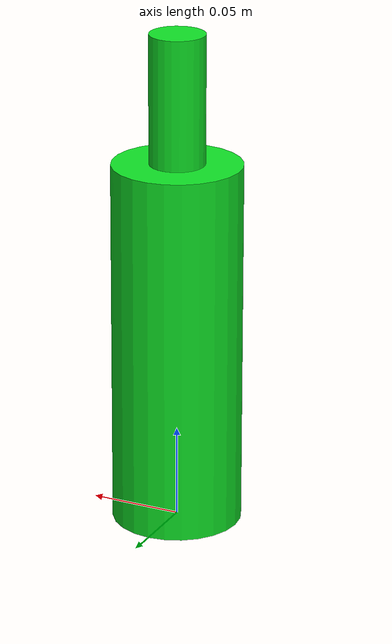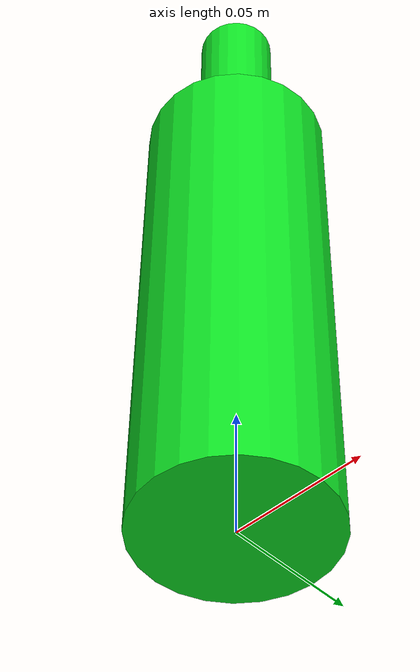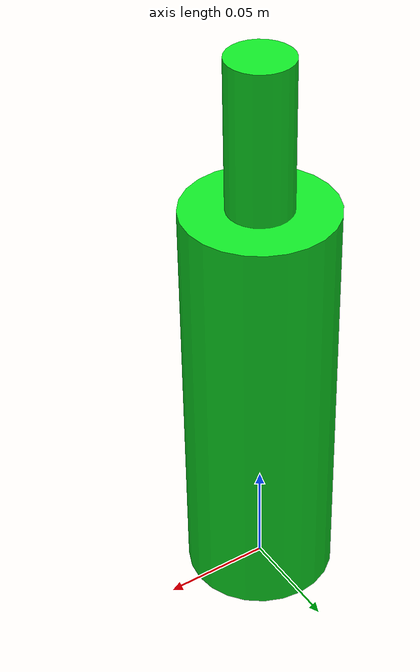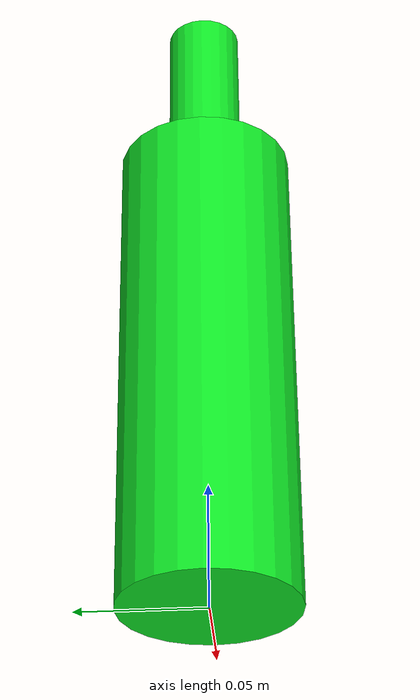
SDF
<?xml version="1.0"?>
<sdf version="1.7">
  <model name="target_bottle">
    <static>true</static>
    <link name="link">

      <!-- Body: r 0.035, h 0.20, centred z 0.10 -> sits flat on the floor. -->
      <visual name="body_visual">
        <pose>0 0 0.10 0 0 0</pose>
        <geometry><cylinder><radius>0.035</radius><length>0.20</length></cylinder></geometry>
        <material>
          <ambient>0.05 0.70 0.12 1</ambient>
          <diffuse>0.06 0.90 0.15 1</diffuse>
          <specular>0.20 0.20 0.20 1</specular>
        </material>
      </visual>
      <collision name="body_collision">
        <pose>0 0 0.10 0 0 0</pose>
        <geometry><cylinder><radius>0.035</radius><length>0.20</length></cylinder></geometry>
      </collision>

      <!-- Neck: r 0.015, h 0.07, centred z 0.235 (sits on top of the body). -->
      <visual name="neck_visual">
        <pose>0 0 0.235 0 0 0</pose>
        <geometry><cylinder><radius>0.015</radius><length>0.07</length></cylinder></geometry>
        <material>
          <ambient>0.05 0.70 0.12 1</ambient>
          <diffuse>0.06 0.90 0.15 1</diffuse>
          <specular>0.20 0.20 0.20 1</specular>
        </material>
      </visual>
      <collision name="neck_collision">
        <pose>0 0 0.235 0 0 0</pose>
        <geometry><cylinder><radius>0.015</radius><length>0.07</length></cylinder></geometry>
      </collision>

    </link>
  </model>
</sdf>
